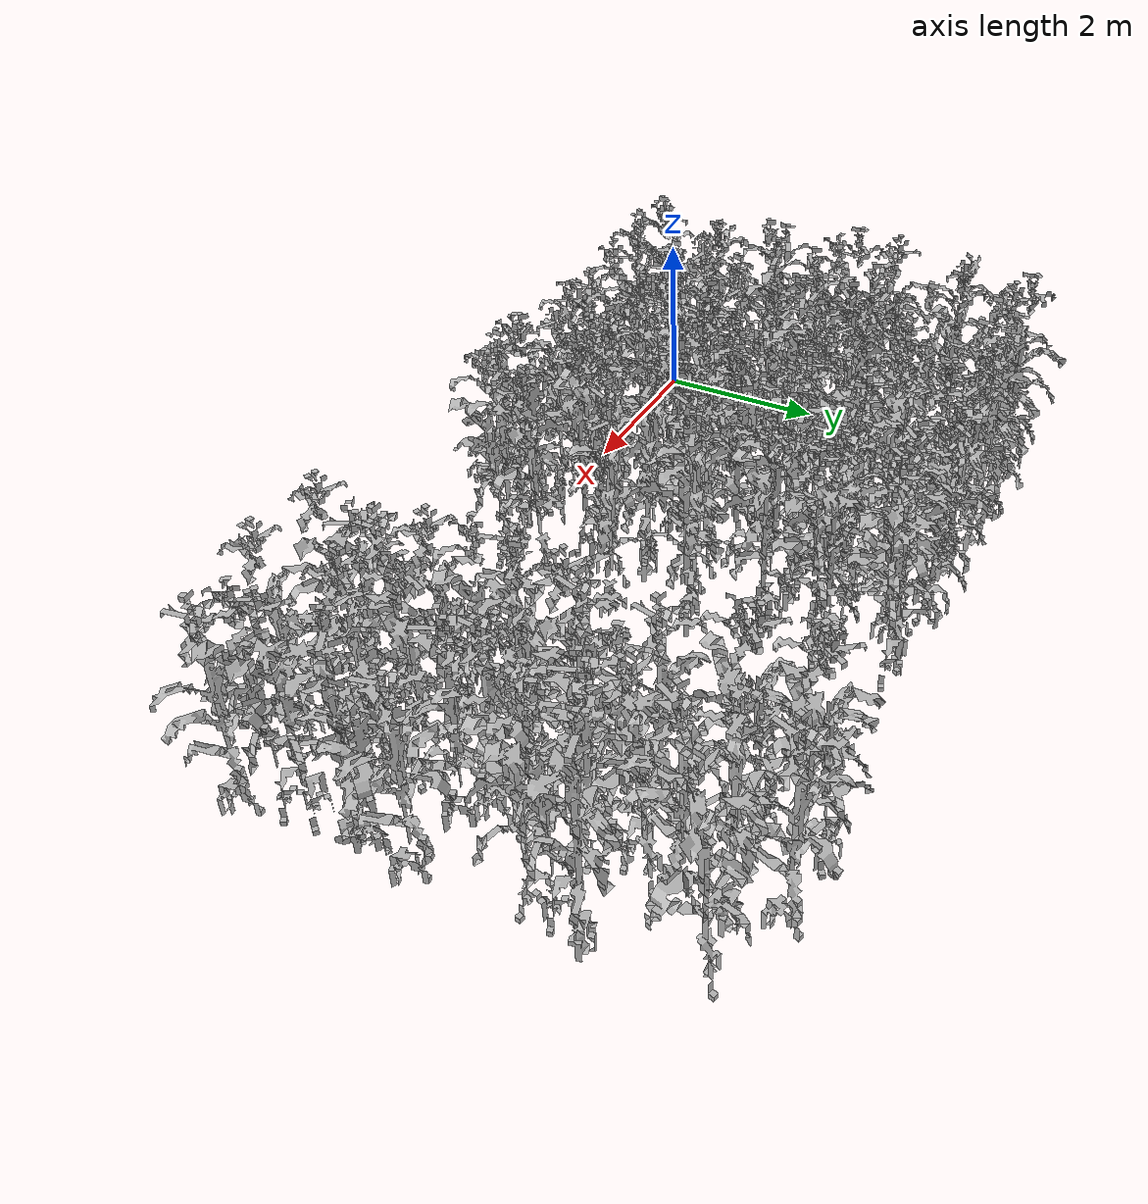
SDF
<?xml version="1.0" ?>
<sdf version="1.5">
  <model name="env_7_plot">
    <static>true</static>

    <include>
      <uri>model://corn_variant_5</uri>
      <name>plant_0_0</name>
      <pose>0.0382618190854052 0.03826181908540519 0 0.0 0.0 0.06981317007977318</pose>
    </include>

    <include>
      <uri>model://corn_variant_5</uri>
      <name>plant_0_1</name>
      <pose>0.30725358453059354 0.0021328684925559934 0 0.0 0.0 4.694935687864747</pose>
    </include>

    <include>
      <uri>model://corn_variant_5</uri>
      <name>plant_0_2</name>
      <pose>0.5750082522888756 -0.028011844976778492 0 0.0 0.0 6.14355896702004</pose>
    </include>

    <include>
      <uri>model://corn_variant_5</uri>
      <name>plant_0_4</name>
      <pose>1.252958624429108 0.008416970407642499 0 0.0 0.0 4.258603374866164</pose>
    </include>

    <include>
      <uri>model://corn_variant_5</uri>
      <name>plant_0_5</name>
      <pose>1.6076621288302901 0.032114882352447936 0 0.0 0.0 5.1312680008633285</pose>
    </include>

    <include>
      <uri>model://corn_variant_5</uri>
      <name>plant_0_7</name>
      <pose>2.1120997733335543 0.07032407268994716 0 0.0 0.0 1.53588974175501</pose>
    </include>

    <include>
      <uri>model://corn_variant_5</uri>
      <name>plant_0_8</name>
      <pose>2.457889272237267 0.022419843061481447 0 0.0 0.0 2.1642082724729685</pose>
    </include>

    <include>
      <uri>model://corn_variant_5</uri>
      <name>plant_0_9</name>
      <pose>2.7624185190788935 -0.025503836222858078 0 0.0 0.0 4.293509959906051</pose>
    </include>

    <include>
      <uri>model://corn_variant_5</uri>
      <name>plant_0_10</name>
      <pose>3.0727629368907077 0.008526562957619947 0 0.0 0.0 2.670353755551324</pose>
    </include>

    <include>
      <uri>model://corn_variant_5</uri>
      <name>plant_0_11</name>
      <pose>3.426791878471535 0.04271923095338672 0 0.0 0.0 0.8203047484373349</pose>
    </include>

    <include>
      <uri>model://corn_variant_5</uri>
      <name>plant_0_12</name>
      <pose>3.719752929277328 -0.05795854419875523 0 0.0 0.0 5.113814708343385</pose>
    </include>

    <include>
      <uri>model://corn_variant_5</uri>
      <name>plant_0_13</name>
      <pose>3.9616048839562117 0.04555216764063338 0 0.0 0.0 6.161012259539984</pose>
    </include>

    <include>
      <uri>model://corn_variant_5</uri>
      <name>plant_0_14</name>
      <pose>4.328360266168626 0.007509536426219504 0 0.0 0.0 3.351032163829113</pose>
    </include>

    <include>
      <uri>model://corn_variant_5</uri>
      <name>plant_0_15</name>
      <pose>4.520221253179638 0.04192960243397567 0 0.0 0.0 4.886921905584122</pose>
    </include>

    <include>
      <uri>model://corn_variant_5</uri>
      <name>plant_0_18</name>
      <pose>0.27930465425243317 0.8172634841124377 0 0.0 0.0 1.6755160819145565</pose>
    </include>

    <include>
      <uri>model://corn_variant_5</uri>
      <name>plant_0_19</name>
      <pose>0.5536162398427127 0.7501285526027587 0 0.0 0.0 3.857177646907468</pose>
    </include>

    <include>
      <uri>model://corn_variant_5</uri>
      <name>plant_0_20</name>
      <pose>0.845011422579998 0.7038102379191666 0 0.0 0.0 2.91469985083053</pose>
    </include>

    <include>
      <uri>model://corn_variant_5</uri>
      <name>plant_0_21</name>
      <pose>1.1475013776195118 0.7650136560838092 0 0.0 0.0 0.06981317007977318</pose>
    </include>

    <include>
      <uri>model://corn_variant_5</uri>
      <name>plant_0_22</name>
      <pose>1.5416798047616183 0.7356658363686485 0 0.0 0.0 2.6179938779914944</pose>
    </include>

    <include>
      <uri>model://corn_variant_5</uri>
      <name>plant_0_23</name>
      <pose>1.9210176341724505 0.7503075360822947 0 0.0 0.0 1.7627825445142729</pose>
    </include>

    <include>
      <uri>model://corn_variant_5</uri>
      <name>plant_0_24</name>
      <pose>2.1328093597541735 0.8052957493471355 0 0.0 0.0 5.98647933434055</pose>
    </include>

    <include>
      <uri>model://corn_variant_5</uri>
      <name>plant_0_25</name>
      <pose>2.3762010062789596 0.7039957745023192 0 0.0 0.0 4.572762640225143</pose>
    </include>

    <include>
      <uri>model://corn_variant_5</uri>
      <name>plant_0_26</name>
      <pose>2.83621353826414 0.7551253670163183 0 0.0 0.0 1.0297442586766545</pose>
    </include>

    <include>
      <uri>model://corn_variant_5</uri>
      <name>plant_0_27</name>
      <pose>3.014922959703077 0.732245067686416 0 0.0 0.0 1.7278759594743862</pose>
    </include>

    <include>
      <uri>model://corn_variant_5</uri>
      <name>plant_0_28</name>
      <pose>3.426534145330855 0.7716783413410354 0 0.0 0.0 5.724679946541401</pose>
    </include>

    <include>
      <uri>model://corn_variant_5</uri>
      <name>plant_0_29</name>
      <pose>3.6720210246027882 0.7394046424583498 0 0.0 0.0 4.241150082346221</pose>
    </include>

    <include>
      <uri>model://corn_variant_5</uri>
      <name>plant_0_30</name>
      <pose>3.949112906738844 0.7286975699057848 0 0.0 0.0 3.961897402027128</pose>
    </include>

    <include>
      <uri>model://corn_variant_5</uri>
      <name>plant_0_32</name>
      <pose>4.545228383174743 0.6864455872903158 0 0.0 0.0 5.98647933434055</pose>
    </include>

    <include>
      <uri>model://corn_variant_5</uri>
      <name>plant_0_34</name>
      <pose>0.05438813287803179 1.5064395154511507 0 0.0 0.0 0.5061454830783556</pose>
    </include>

    <include>
      <uri>model://corn_variant_5</uri>
      <name>plant_0_35</name>
      <pose>0.2350880503458581 1.4932400897155753 0 0.0 0.0 3.5604716740684323</pose>
    </include>

    <include>
      <uri>model://corn_variant_5</uri>
      <name>plant_0_36</name>
      <pose>0.6132144711279102 1.5244635001182343 0 0.0 0.0 3.2986722862692828</pose>
    </include>

    <include>
      <uri>model://corn_variant_5</uri>
      <name>plant_0_38</name>
      <pose>1.2365371151176758 1.562910865703924 0 0.0 0.0 5.934119456780721</pose>
    </include>

    <include>
      <uri>model://corn_variant_5</uri>
      <name>plant_0_39</name>
      <pose>1.5290493574880668 1.4881196115115827 0 0.0 0.0 2.897246558310587</pose>
    </include>

    <include>
      <uri>model://corn_variant_5</uri>
      <name>plant_0_40</name>
      <pose>1.8454326656092375 1.5320843389192031 0 0.0 0.0 0.6806784082777885</pose>
    </include>

    <include>
      <uri>model://corn_variant_5</uri>
      <name>plant_0_41</name>
      <pose>2.127473912598458 1.4954296054527214 0 0.0 0.0 1.361356816555577</pose>
    </include>

    <include>
      <uri>model://corn_variant_5</uri>
      <name>plant_0_42</name>
      <pose>2.4315043049411256 1.5223743782215957 0 0.0 0.0 3.8920842319473548</pose>
    </include>

    <include>
      <uri>model://corn_variant_5</uri>
      <name>plant_0_43</name>
      <pose>2.6994136530231922 1.5958401776416717 0 0.0 0.0 2.426007660272118</pose>
    </include>

    <include>
      <uri>model://corn_variant_5</uri>
      <name>plant_0_44</name>
      <pose>3.0432348033618997 1.5653378175109218 0 0.0 0.0 2.303834612632515</pose>
    </include>

    <include>
      <uri>model://corn_variant_5</uri>
      <name>plant_0_46</name>
      <pose>3.6526337496567387 1.5189443909026437 0 0.0 0.0 2.5656340004316642</pose>
    </include>

    <include>
      <uri>model://corn_variant_5</uri>
      <name>plant_0_47</name>
      <pose>3.938360053091778 1.5264414843601453 0 0.0 0.0 3.2812189937493397</pose>
    </include>

    <include>
      <uri>model://corn_variant_5</uri>
      <name>plant_0_48</name>
      <pose>4.217592911671677 1.482618377676385 0 0.0 0.0 1.0821041362364843</pose>
    </include>

    <include>
      <uri>model://corn_variant_5</uri>
      <name>plant_0_49</name>
      <pose>4.632400119650221 1.5071615582426912 0 0.0 0.0 2.722713633111154</pose>
    </include>

    <include>
      <uri>model://corn_variant_5</uri>
      <name>plant_0_51</name>
      <pose>-0.03231156529698353 2.3561212775483678 0 0.0 0.0 3.7524578917878086</pose>
    </include>

    <include>
      <uri>model://corn_variant_5</uri>
      <name>plant_0_52</name>
      <pose>0.3183790891664149 2.3001318275860814 0 0.0 0.0 4.590215932745087</pose>
    </include>

    <include>
      <uri>model://corn_variant_5</uri>
      <name>plant_0_53</name>
      <pose>0.5512395909095484 2.293473562080061 0 0.0 0.0 0.5410520681182421</pose>
    </include>

    <include>
      <uri>model://corn_variant_5</uri>
      <name>plant_0_54</name>
      <pose>0.9102302821696632 2.3196722151090956 0 0.0 0.0 1.7627825445142729</pose>
    </include>

    <include>
      <uri>model://corn_variant_5</uri>
      <name>plant_0_55</name>
      <pose>1.2479822039833652 2.298691381815757 0 0.0 0.0 3.141592653589793</pose>
    </include>

    <include>
      <uri>model://corn_variant_5</uri>
      <name>plant_0_56</name>
      <pose>1.5282135674574717 2.1996003434010176 0 0.0 0.0 3.5081117965086026</pose>
    </include>

    <include>
      <uri>model://corn_variant_5</uri>
      <name>plant_0_57</name>
      <pose>1.7978634907524509 2.2501249602879265 0 0.0 0.0 5.777039824101231</pose>
    </include>

    <include>
      <uri>model://corn_variant_5</uri>
      <name>plant_0_59</name>
      <pose>2.4557309197173973 2.253312723936497 0 0.0 0.0 1.7278759594743862</pose>
    </include>

    <include>
      <uri>model://corn_variant_5</uri>
      <name>plant_0_60</name>
      <pose>2.7818709936224715 2.1970697865536297 0 0.0 0.0 5.1661745859032155</pose>
    </include>

    <include>
      <uri>model://corn_variant_5</uri>
      <name>plant_0_62</name>
      <pose>3.3983964752610905 2.319636411235632 0 0.0 0.0 3.7699111843077517</pose>
    </include>

    <include>
      <uri>model://corn_variant_5</uri>
      <name>plant_0_63</name>
      <pose>3.663195507789806 2.2788106381034012 0 0.0 0.0 1.361356816555577</pose>
    </include>

    <include>
      <uri>model://corn_variant_5</uri>
      <name>plant_0_64</name>
      <pose>3.9594623880759707 2.284043275941595 0 0.0 0.0 1.064650843716541</pose>
    </include>

    <include>
      <uri>model://corn_variant_5</uri>
      <name>plant_0_65</name>
      <pose>4.285205425207449 2.3007128723172308 0 0.0 0.0 2.722713633111154</pose>
    </include>

    <include>
      <uri>model://corn_variant_5</uri>
      <name>plant_0_66</name>
      <pose>4.592263699525615 2.2988962055085973 0 0.0 0.0 3.5255650890285457</pose>
    </include>

    <include>
      <uri>model://corn_variant_5</uri>
      <name>plant_0_68</name>
      <pose>0.021233959878489812 3.0662217566759264 0 0.0 0.0 5.340707511102648</pose>
    </include>

    <include>
      <uri>model://corn_variant_5</uri>
      <name>plant_0_70</name>
      <pose>0.6403953385735991 3.059243063256313 0 0.0 0.0 0.6283185307179586</pose>
    </include>

    <include>
      <uri>model://corn_variant_5</uri>
      <name>plant_0_71</name>
      <pose>0.9166555170353814 3.0216302878896566 0 0.0 0.0 3.12413936106985</pose>
    </include>

    <include>
      <uri>model://corn_variant_5</uri>
      <name>plant_0_72</name>
      <pose>1.1840603838452939 2.976606454355003 0 0.0 0.0 0.6457718232379019</pose>
    </include>

    <include>
      <uri>model://corn_variant_5</uri>
      <name>plant_0_73</name>
      <pose>1.554942892306407 3.0242338088889205 0 0.0 0.0 3.6302848441482056</pose>
    </include>

    <include>
      <uri>model://corn_variant_5</uri>
      <name>plant_0_74</name>
      <pose>1.789743207935829 2.984221120263813 0 0.0 0.0 2.5830872929516078</pose>
    </include>

    <include>
      <uri>model://corn_variant_5</uri>
      <name>plant_0_76</name>
      <pose>2.4144144227610465 3.0232051180089736 0 0.0 0.0 1.5184364492350666</pose>
    </include>

    <include>
      <uri>model://corn_variant_5</uri>
      <name>plant_0_77</name>
      <pose>2.7189636938126887 3.0875664291378575 0 0.0 0.0 4.71238898038469</pose>
    </include>

    <include>
      <uri>model://corn_variant_5</uri>
      <name>plant_0_78</name>
      <pose>3.0061113345640593 3.0247537726281823 0 0.0 0.0 5.009094953223726</pose>
    </include>

    <include>
      <uri>model://corn_variant_5</uri>
      <name>plant_0_79</name>
      <pose>3.3112845906981723 3.0894761381834726 0 0.0 0.0 5.969026041820607</pose>
    </include>

    <include>
      <uri>model://corn_variant_5</uri>
      <name>plant_0_80</name>
      <pose>3.731594132254705 3.0978105519764374 0 0.0 0.0 3.368485456349056</pose>
    </include>

    <include>
      <uri>model://corn_variant_5</uri>
      <name>plant_0_81</name>
      <pose>3.917808606871479 3.0678637949249534 0 0.0 0.0 2.199114857512855</pose>
    </include>

    <include>
      <uri>model://corn_variant_5</uri>
      <name>plant_0_82</name>
      <pose>4.342302262787229 3.045251661806455 0 0.0 0.0 4.101523742186674</pose>
    </include>

    <include>
      <uri>model://corn_variant_5</uri>
      <name>plant_0_85</name>
      <pose>-0.030761617892264705 3.7309082749891833 0 0.0 0.0 2.3911010752322315</pose>
    </include>

    <include>
      <uri>model://corn_variant_5</uri>
      <name>plant_0_87</name>
      <pose>0.6024107103000853 3.804668779320821 0 0.0 0.0 3.717551306747922</pose>
    </include>

    <include>
      <uri>model://corn_variant_5</uri>
      <name>plant_0_88</name>
      <pose>0.9223399663855452 3.8276899534565607 0 0.0 0.0 0.017453292519943295</pose>
    </include>

    <include>
      <uri>model://corn_variant_5</uri>
      <name>plant_0_91</name>
      <pose>1.8303208164317293 3.8046805916949977 0 0.0 0.0 5.6374134839416845</pose>
    </include>

    <include>
      <uri>model://corn_variant_5</uri>
      <name>plant_0_92</name>
      <pose>2.120409153687448 3.7837106613963387 0 0.0 0.0 4.956735075663896</pose>
    </include>

    <include>
      <uri>model://corn_variant_5</uri>
      <name>plant_0_93</name>
      <pose>2.4325669149479707 3.7991802133578974 0 0.0 0.0 3.9095375244672983</pose>
    </include>

    <include>
      <uri>model://corn_variant_5</uri>
      <name>plant_0_94</name>
      <pose>2.7515140225604027 3.8102669628192087 0 0.0 0.0 4.1887902047863905</pose>
    </include>

    <include>
      <uri>model://corn_variant_5</uri>
      <name>plant_0_95</name>
      <pose>3.1040899682017895 3.7476952584708494 0 0.0 0.0 5.253441048502932</pose>
    </include>

    <include>
      <uri>model://corn_variant_5</uri>
      <name>plant_0_96</name>
      <pose>3.3130652386218817 3.8238750533185684 0 0.0 0.0 0.0</pose>
    </include>

    <include>
      <uri>model://corn_variant_5</uri>
      <name>plant_0_97</name>
      <pose>3.7220102101422032 3.8467967569060724 0 0.0 0.0 6.14355896702004</pose>
    </include>

    <include>
      <uri>model://corn_variant_5</uri>
      <name>plant_0_98</name>
      <pose>3.960854536012722 3.817664734206622 0 0.0 0.0 1.53588974175501</pose>
    </include>

    <include>
      <uri>model://corn_variant_5</uri>
      <name>plant_0_99</name>
      <pose>4.327848017356375 3.749110271004632 0 0.0 0.0 3.961897402027128</pose>
    </include>

    <include>
      <uri>model://corn_variant_5</uri>
      <name>plant_0_100</name>
      <pose>4.5774778321843055 3.8150502202339407 0 0.0 0.0 5.270894341022875</pose>
    </include>

    <include>
      <uri>model://corn_variant_5</uri>
      <name>plant_0_103</name>
      <pose>0.3110189143124876 4.551440398775333 0 0.0 0.0 3.8048177693476384</pose>
    </include>

    <include>
      <uri>model://corn_variant_5</uri>
      <name>plant_0_104</name>
      <pose>0.6435540341821121 4.601929740264385 0 0.0 0.0 5.270894341022875</pose>
    </include>

    <include>
      <uri>model://corn_variant_5</uri>
      <name>plant_0_105</name>
      <pose>0.9267134293958774 4.561730539645346 0 0.0 0.0 0.03490658503988659</pose>
    </include>

    <include>
      <uri>model://corn_variant_5</uri>
      <name>plant_0_106</name>
      <pose>1.2635631775962475 4.594660313002113 0 0.0 0.0 3.2812189937493397</pose>
    </include>

    <include>
      <uri>model://corn_variant_5</uri>
      <name>plant_0_107</name>
      <pose>1.5345448762232143 4.558140653813616 0 0.0 0.0 6.126105674500097</pose>
    </include>

    <include>
      <uri>model://corn_variant_5</uri>
      <name>plant_0_108</name>
      <pose>1.8225001766028153 4.6320073109279845 0 0.0 0.0 2.9321531433504737</pose>
    </include>

    <include>
      <uri>model://corn_variant_5</uri>
      <name>plant_0_109</name>
      <pose>2.1130666935197904 4.58053330648021 0 0.0 0.0 2.234021442552742</pose>
    </include>

    <include>
      <uri>model://corn_variant_5</uri>
      <name>plant_0_110</name>
      <pose>2.480375585489734 4.520857133281362 0 0.0 0.0 2.8448866807507573</pose>
    </include>

    <include>
      <uri>model://corn_variant_5</uri>
      <name>plant_0_111</name>
      <pose>2.6678326911742283 4.498968756688013 0 0.0 0.0 5.305800926062762</pose>
    </include>

    <include>
      <uri>model://corn_variant_5</uri>
      <name>plant_0_112</name>
      <pose>3.066976507477156 4.6094354921148195 0 0.0 0.0 1.8500490071139892</pose>
    </include>

    <include>
      <uri>model://corn_variant_5</uri>
      <name>plant_0_113</name>
      <pose>3.4325302255314116 4.564178484061838 0 0.0 0.0 4.014257279586958</pose>
    </include>

    <include>
      <uri>model://corn_variant_5</uri>
      <name>plant_0_114</name>
      <pose>3.6367553347102533 4.5431203228710695 0 0.0 0.0 0.7330382858376184</pose>
    </include>

    <include>
      <uri>model://corn_variant_5</uri>
      <name>plant_0_115</name>
      <pose>3.985048935110793 4.559604661367087 0 0.0 0.0 0.9424777960769379</pose>
    </include>

    <include>
      <uri>model://corn_variant_5</uri>
      <name>plant_0_116</name>
      <pose>4.254140679007071 4.616566133815406 0 0.0 0.0 5.777039824101231</pose>
    </include>

    <include>
      <uri>model://corn_variant_5</uri>
      <name>plant_0_117</name>
      <pose>4.545843145922605 4.54943194496739 0 0.0 0.0 5.096361415823442</pose>
    </include>

    <include>
      <uri>model://corn_variant_5</uri>
      <name>plant_0_119</name>
      <pose>6.947591036271968 0.01935093901453526 0 0.0 0.0 5.811946409141117</pose>
    </include>

    <include>
      <uri>model://corn_variant_5</uri>
      <name>plant_0_120</name>
      <pose>7.707467471166107 -0.006217310229313547 0 0.0 0.0 6.09119908946021</pose>
    </include>

    <include>
      <uri>model://corn_variant_5</uri>
      <name>plant_0_121</name>
      <pose>8.521825459920509 0.02353593810217104 0 0.0 0.0 1.710422666954443</pose>
    </include>

    <include>
      <uri>model://corn_variant_5</uri>
      <name>plant_0_122</name>
      <pose>6.974962834710206 0.36042251523263374 0 0.0 0.0 2.0420352248333655</pose>
    </include>

    <include>
      <uri>model://corn_variant_5</uri>
      <name>plant_0_124</name>
      <pose>8.509467251192943 0.28940063194929266 0 0.0 0.0 5.218534463463046</pose>
    </include>

    <include>
      <uri>model://corn_variant_5</uri>
      <name>plant_0_125</name>
      <pose>6.925887857250337 0.6488120769700281 0 0.0 0.0 1.5533430342749532</pose>
    </include>

    <include>
      <uri>model://corn_variant_5</uri>
      <name>plant_0_127</name>
      <pose>8.472996813376875 0.6102979790503908 0 0.0 0.0 5.619960191421741</pose>
    </include>

    <include>
      <uri>model://corn_variant_5</uri>
      <name>plant_0_129</name>
      <pose>7.713506029012857 0.8527303614300984 0 0.0 0.0 6.003932626860494</pose>
    </include>

    <include>
      <uri>model://corn_variant_5</uri>
      <name>plant_0_130</name>
      <pose>8.410332500381791 0.9496299003766374 0 0.0 0.0 3.6302848441482056</pose>
    </include>

    <include>
      <uri>model://corn_variant_5</uri>
      <name>plant_0_131</name>
      <pose>6.948405338168285 1.2053347982472162 0 0.0 0.0 5.899212871740834</pose>
    </include>

    <include>
      <uri>model://corn_variant_5</uri>
      <name>plant_0_132</name>
      <pose>7.652717709460286 1.1880233406612728 0 0.0 0.0 4.293509959906051</pose>
    </include>

    <include>
      <uri>model://corn_variant_5</uri>
      <name>plant_0_134</name>
      <pose>6.959810984823592 1.5218910573317161 0 0.0 0.0 4.939281783143953</pose>
    </include>

    <include>
      <uri>model://corn_variant_5</uri>
      <name>plant_0_136</name>
      <pose>8.471753085825942 1.5010491804028838 0 0.0 0.0 0.8901179185171081</pose>
    </include>

    <include>
      <uri>model://corn_variant_5</uri>
      <name>plant_0_137</name>
      <pose>6.982487238961575 1.8348519845034585 0 0.0 0.0 3.368485456349056</pose>
    </include>

    <include>
      <uri>model://corn_variant_5</uri>
      <name>plant_0_138</name>
      <pose>7.789838947439536 1.8329133015786372 0 0.0 0.0 1.9722220547535925</pose>
    </include>

    <include>
      <uri>model://corn_variant_5</uri>
      <name>plant_0_139</name>
      <pose>8.488520718917238 1.8188879113577403 0 0.0 0.0 1.7976891295541595</pose>
    </include>

    <include>
      <uri>model://corn_variant_5</uri>
      <name>plant_0_140</name>
      <pose>6.928690669319137 2.1296041117367523 0 0.0 0.0 0.22689280275926285</pose>
    </include>

    <include>
      <uri>model://corn_variant_5</uri>
      <name>plant_0_141</name>
      <pose>7.642747828393974 2.14943863130649 0 0.0 0.0 1.4486232791552935</pose>
    </include>

    <include>
      <uri>model://corn_variant_5</uri>
      <name>plant_0_143</name>
      <pose>6.942720415223423 2.5370649264991565 0 0.0 0.0 5.777039824101231</pose>
    </include>

    <include>
      <uri>model://corn_variant_5</uri>
      <name>plant_0_144</name>
      <pose>7.720534721064524 2.525763209118987 0 0.0 0.0 6.161012259539984</pose>
    </include>

    <include>
      <uri>model://corn_variant_5</uri>
      <name>plant_0_146</name>
      <pose>6.917667423014818 2.679847626017012 0 0.0 0.0 1.239183768915974</pose>
    </include>

    <include>
      <uri>model://corn_variant_5</uri>
      <name>plant_0_148</name>
      <pose>8.472795002241877 2.7436136372333686 0 0.0 0.0 4.468042885105484</pose>
    </include>

    <include>
      <uri>model://corn_variant_5</uri>
      <name>plant_0_150</name>
      <pose>7.725645107252354 3.065033292521632 0 0.0 0.0 1.9024088846738192</pose>
    </include>

    <include>
      <uri>model://corn_variant_5</uri>
      <name>plant_0_151</name>
      <pose>8.476992913513214 3.0378243845762327 0 0.0 0.0 4.991641660703783</pose>
    </include>

    <include>
      <uri>model://corn_variant_5</uri>
      <name>plant_0_152</name>
      <pose>6.934464037410274 3.3992006085648536 0 0.0 0.0 1.3089969389957472</pose>
    </include>

    <include>
      <uri>model://corn_variant_5</uri>
      <name>plant_0_153</name>
      <pose>7.660796394195501 3.2903684361363017 0 0.0 0.0 4.904375198104066</pose>
    </include>

    <include>
      <uri>model://corn_variant_5</uri>
      <name>plant_0_154</name>
      <pose>8.48144442764586 3.256781510919776 0 0.0 0.0 3.385938748868999</pose>
    </include>

    <include>
      <uri>model://corn_variant_5</uri>
      <name>plant_0_156</name>
      <pose>7.781490095778357 3.6278283474906488 0 0.0 0.0 5.969026041820607</pose>
    </include>

    <include>
      <uri>model://corn_variant_5</uri>
      <name>plant_0_158</name>
      <pose>6.957811014500009 3.900951127802173 0 0.0 0.0 3.961897402027128</pose>
    </include>

    <include>
      <uri>model://corn_variant_5</uri>
      <name>plant_0_159</name>
      <pose>7.7412773329396405 4.012203322454971 0 0.0 0.0 1.0471975511965976</pose>
    </include>

    <include>
      <uri>model://corn_variant_5</uri>
      <name>plant_0_161</name>
      <pose>6.943712949941084 4.234109569476032 0 0.0 0.0 5.427973973702365</pose>
    </include>

    <include>
      <uri>model://corn_variant_5</uri>
      <name>plant_0_162</name>
      <pose>7.734236001379262 4.251176784274799 0 0.0 0.0 3.07177948351002</pose>
    </include>

    <include>
      <uri>model://corn_variant_5</uri>
      <name>plant_0_164</name>
      <pose>6.9510669356694095 4.5717144578896916 0 0.0 0.0 4.153883619746504</pose>
    </include>

    <include>
      <uri>model://corn_variant_5</uri>
      <name>plant_0_166</name>
      <pose>8.441180951283329 4.497322851421285 0 0.0 0.0 6.021385919380437</pose>
    </include>

    <include>
      <uri>model://corn_variant_5</uri>
      <name>plant_0_167</name>
      <pose>6.966730081114597 4.845271240808215 0 0.0 0.0 5.375614096142535</pose>
    </include>

    <include>
      <uri>model://corn_variant_5</uri>
      <name>plant_0_168</name>
      <pose>7.642156951741186 4.903361673831549 0 0.0 0.0 1.2217304763960306</pose>
    </include>

  </model>
</sdf>

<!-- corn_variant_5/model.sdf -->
<sdf version="1.5">
     <model name="corn_variant_5">
          <static>true</static>
          <link name="link">
               <inertial>
                    <pose>0 0 0 0 0 0</pose>
                    <mass>4</mass>
                    <inertia>
                         <ixx>0.01</ixx>
                         <ixy>0</ixy>
                         <ixz>0</ixz>
                         <iyy>0.01</iyy>
                         <iyz>0</iyz>
                         <izz>0.01</izz>
                    </inertia>
               </inertial>

               <collision name='collision'>
                    <pose>0 0 1.125 0 0 0</pose>
                    <geometry>
                         <cylinder>
                              <radius>0.01</radius>
                              <length>2.25</length>
                         </cylinder>
                    </geometry>
                    <max_contacts>10</max_contacts>
               </collision>

               <visual name="stem">
                    <geometry>
                         <mesh>
                              <uri>model://corn_variant_5/meshes/corn_variant_5.dae</uri>
                              <submesh>
                                   <name>Stem</name>
                              </submesh>
                         </mesh>
                    </geometry>
                    <material>
                         <script>
                              <uri>model://corn_variant_5/materials/scripts/</uri>
                              <uri>model://corn_variant_5/materials/textures/</uri>
                              <name>Corn/Stem</name>
                         </script>
                    </material>
               </visual>

               <visual name="leavesm">
                    <geometry>
                         <mesh>
                              <uri>model://corn_variant_5/meshes/corn_variant_5.dae</uri>
                              <submesh>
                                   <name>LeavesMid</name>
                              </submesh>
                         </mesh>
                    </geometry>
                    <material>
                         <script>
                              <uri>model://corn_variant_5/materials/scripts/</uri>
                              <uri>model://corn_variant_5/materials/textures/</uri>
                              <name>Corn/LeavesMid</name>
                         </script>
                    </material>
               </visual>

               <visual name="leavest">
                    <geometry>
                         <mesh>
                              <uri>model://corn_variant_5/meshes/corn_variant_5.dae</uri>
                              <submesh>
                                   <name>LeavesTop</name>
                              </submesh>
                         </mesh>
                    </geometry>
                    <material>
                         <script>
                              <uri>model://corn_variant_5/materials/scripts/</uri>
                              <uri>model://corn_variant_5/materials/textures/</uri>
                              <name>Corn/LeavesTop</name>
                         </script>
                    </material>
               </visual>

               <visual name="ear">
                    <geometry>
                         <mesh>
                              <uri>model://corn_variant_5/meshes/corn_variant_5.dae</uri>
                              <submesh>
                                   <name>Ear</name>
                              </submesh>
                         </mesh>
                    </geometry>
                    <material>
                         <script>
                              <uri>model://corn_variant_5/materials/scripts/</uri>
                              <uri>model://corn_variant_5/materials/textures/</uri>
                              <name>Corn/Ear</name>
                         </script>
                    </material>
               </visual>

               <visual name="eart">
                    <geometry>
                         <mesh>
                              <uri>model://corn_variant_5/meshes/corn_variant_5.dae</uri>
                              <submesh>
                                   <name>EarTassel</name>
                              </submesh>
                         </mesh>
                    </geometry>
                    <material>
                         <script>
                              <uri>model://corn_variant_5/materials/scripts/</uri>
                              <uri>model://corn_variant_5/materials/textures/</uri>
                              <name>Corn/EarTassel</name>
                         </script>
                    </material>
               </visual>

               <visual name="flowert">
                    <geometry>
                         <mesh>
                              <uri>model://corn_variant_5/meshes/corn_variant_5.dae</uri>
                              <submesh>
                                   <name>FlowerTop</name>
                              </submesh>
                         </mesh>
                    </geometry>
                    <material>
                         <script>
                              <uri>model://corn_variant_5/materials/scripts/</uri>
                              <uri>model://corn_variant_5/materials/textures/</uri>
                              <name>Corn/FlowerTop</name>
                         </script>
                    </material>
               </visual>

          </link>
     </model>
</sdf>
